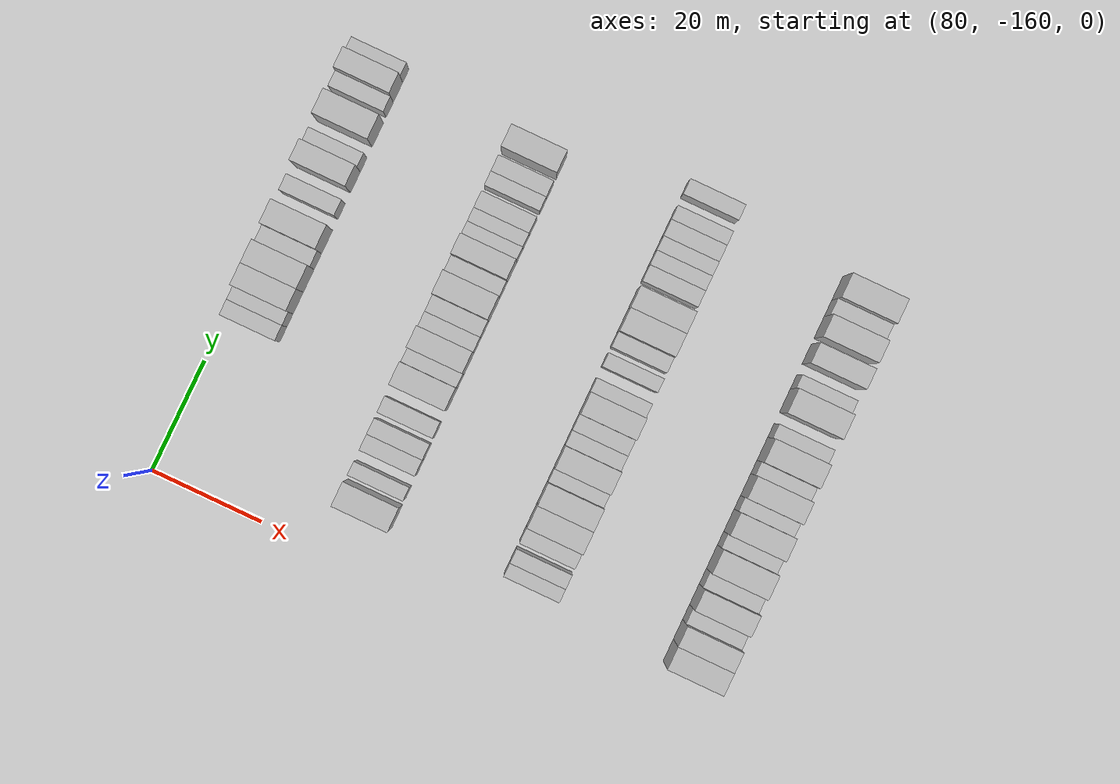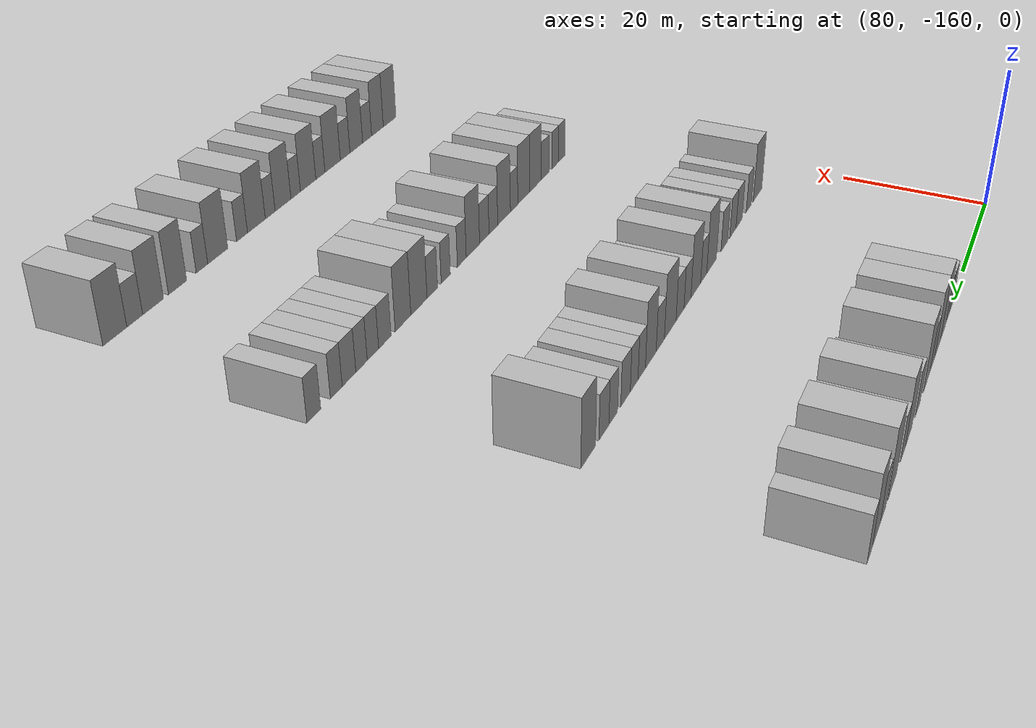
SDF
<sdf version="1.6">
 <world name="default">
  <model name="building_539">
   <static>1</static>
   <pose>85.0000 -130.4149 0 0.000000 0.000000 0.000000</pose>
   <link name="link">
    <pose>0 0 3.00 0 0 0</pose>
    <collision name="collision"><geometry><box><size>10.0000 2.7645 6.0000</size></box></geometry></collision>
    <visual name="visual">
     <cast_shadows>0</cast_shadows>
     <geometry><box><size>10.0000 2.7645 6.0000</size></box></geometry>
     <material>
      <script>
       <uri>model://HANNAS_wall/materials/scripts</uri>
       <uri>model://HANNAS_wall/materials/textures</uri>
       <name>vrc/HANNAS_wall</name>
      </script>
     </material>
    </visual>
   </link>
  </model>
  <model name="building_540">
   <static>1</static>
   <pose>85.0000 -127.8289 0 0.000000 0.000000 0.000000</pose>
   <link name="link">
    <pose>0 0 3.00 0 0 0</pose>
    <collision name="collision"><geometry><box><size>10.0000 2.4074 6.0000</size></box></geometry></collision>
    <visual name="visual">
     <cast_shadows>0</cast_shadows>
     <geometry><box><size>10.0000 2.4074 6.0000</size></box></geometry>
     <material>
      <script>
       <uri>model://HANNAS_wall/materials/scripts</uri>
       <uri>model://HANNAS_wall/materials/textures</uri>
       <name>vrc/HANNAS_wall</name>
      </script>
     </material>
    </visual>
   </link>
  </model>
  <model name="building_541">
   <static>1</static>
   <pose>85.0000 -124.6546 0 0.000000 0.000000 0.000000</pose>
   <link name="link">
    <pose>0 0 4.50 0 0 0</pose>
    <collision name="collision"><geometry><box><size>10.0000 3.9412 9.0000</size></box></geometry></collision>
    <visual name="visual">
     <cast_shadows>0</cast_shadows>
     <geometry><box><size>10.0000 3.9412 9.0000</size></box></geometry>
     <material>
      <script>
       <uri>model://HANNAS_wall/materials/scripts</uri>
       <uri>model://HANNAS_wall/materials/textures</uri>
       <name>vrc/HANNAS_wall</name>
      </script>
     </material>
    </visual>
   </link>
  </model>
  <model name="building_542">
   <static>1</static>
   <pose>85.0000 -120.5861 0 0.000000 0.000000 0.000000</pose>
   <link name="link">
    <pose>0 0 4.50 0 0 0</pose>
    <collision name="collision"><geometry><box><size>10.0000 4.1958 9.0000</size></box></geometry></collision>
    <visual name="visual">
     <cast_shadows>0</cast_shadows>
     <geometry><box><size>10.0000 4.1958 9.0000</size></box></geometry>
     <material>
      <script>
       <uri>model://HANNAS_wall/materials/scripts</uri>
       <uri>model://HANNAS_wall/materials/textures</uri>
       <name>vrc/HANNAS_wall</name>
      </script>
     </material>
    </visual>
   </link>
  </model>
  <model name="building_543">
   <static>1</static>
   <pose>85.0000 -117.0441 0 0.000000 0.000000 0.000000</pose>
   <link name="link">
    <pose>0 0 3.00 0 0 0</pose>
    <collision name="collision"><geometry><box><size>10.0000 2.8881 6.0000</size></box></geometry></collision>
    <visual name="visual">
     <cast_shadows>0</cast_shadows>
     <geometry><box><size>10.0000 2.8881 6.0000</size></box></geometry>
     <material>
      <script>
       <uri>model://HANNAS_wall/materials/scripts</uri>
       <uri>model://HANNAS_wall/materials/textures</uri>
       <name>vrc/HANNAS_wall</name>
      </script>
     </material>
    </visual>
   </link>
  </model>
  <model name="building_544">
   <static>1</static>
   <pose>85.0000 -113.4410 0 0.000000 0.000000 0.000000</pose>
   <link name="link">
    <pose>0 0 4.50 0 0 0</pose>
    <collision name="collision"><geometry><box><size>10.0000 4.3182 9.0000</size></box></geometry></collision>
    <visual name="visual">
     <cast_shadows>0</cast_shadows>
     <geometry><box><size>10.0000 4.3182 9.0000</size></box></geometry>
     <material>
      <script>
       <uri>model://HANNAS_wall/materials/scripts</uri>
       <uri>model://HANNAS_wall/materials/textures</uri>
       <name>vrc/HANNAS_wall</name>
      </script>
     </material>
    </visual>
   </link>
  </model>
  <model name="building_545">
   <static>1</static>
   <pose>85.0000 -107.8302 0 0.000000 0.000000 0.000000</pose>
   <link name="link">
    <pose>0 0 3.00 0 0 0</pose>
    <collision name="collision"><geometry><box><size>10.0000 2.9035 6.0000</size></box></geometry></collision>
    <visual name="visual">
     <cast_shadows>0</cast_shadows>
     <geometry><box><size>10.0000 2.9035 6.0000</size></box></geometry>
     <material>
      <script>
       <uri>model://HANNAS_wall/materials/scripts</uri>
       <uri>model://HANNAS_wall/materials/textures</uri>
       <name>vrc/HANNAS_wall</name>
      </script>
     </material>
    </visual>
   </link>
  </model>
  <model name="building_546">
   <static>1</static>
   <pose>85.0000 -102.4607 0 0.000000 0.000000 0.000000</pose>
   <link name="link">
    <pose>0 0 4.50 0 0 0</pose>
    <collision name="collision"><geometry><box><size>10.0000 3.8355 9.0000</size></box></geometry></collision>
    <visual name="visual">
     <cast_shadows>0</cast_shadows>
     <geometry><box><size>10.0000 3.8355 9.0000</size></box></geometry>
     <material>
      <script>
       <uri>model://HANNAS_wall/materials/scripts</uri>
       <uri>model://HANNAS_wall/materials/textures</uri>
       <name>vrc/HANNAS_wall</name>
      </script>
     </material>
    </visual>
   </link>
  </model>
  <model name="building_547">
   <static>1</static>
   <pose>85.0000 -99.2539 0 0.000000 0.000000 0.000000</pose>
   <link name="link">
    <pose>0 0 3.00 0 0 0</pose>
    <collision name="collision"><geometry><box><size>10.0000 2.5783 6.0000</size></box></geometry></collision>
    <visual name="visual">
     <cast_shadows>0</cast_shadows>
     <geometry><box><size>10.0000 2.5783 6.0000</size></box></geometry>
     <material>
      <script>
       <uri>model://HANNAS_wall/materials/scripts</uri>
       <uri>model://HANNAS_wall/materials/textures</uri>
       <name>vrc/HANNAS_wall</name>
      </script>
     </material>
    </visual>
   </link>
  </model>
  <model name="building_548">
   <static>1</static>
   <pose>85.0000 -93.7427 0 0.000000 0.000000 0.000000</pose>
   <link name="link">
    <pose>0 0 4.50 0 0 0</pose>
    <collision name="collision"><geometry><box><size>10.0000 4.4441 9.0000</size></box></geometry></collision>
    <visual name="visual">
     <cast_shadows>0</cast_shadows>
     <geometry><box><size>10.0000 4.4441 9.0000</size></box></geometry>
     <material>
      <script>
       <uri>model://HANNAS_wall/materials/scripts</uri>
       <uri>model://HANNAS_wall/materials/textures</uri>
       <name>vrc/HANNAS_wall</name>
      </script>
     </material>
    </visual>
   </link>
  </model>
  <model name="building_549">
   <static>1</static>
   <pose>85.0000 -89.1301 0 0.000000 0.000000 0.000000</pose>
   <link name="link">
    <pose>0 0 3.00 0 0 0</pose>
    <collision name="collision"><geometry><box><size>10.0000 2.7810 6.0000</size></box></geometry></collision>
    <visual name="visual">
     <cast_shadows>0</cast_shadows>
     <geometry><box><size>10.0000 2.7810 6.0000</size></box></geometry>
     <material>
      <script>
       <uri>model://HANNAS_wall/materials/scripts</uri>
       <uri>model://HANNAS_wall/materials/textures</uri>
       <name>vrc/HANNAS_wall</name>
      </script>
     </material>
    </visual>
   </link>
  </model>
  <model name="building_550">
   <static>1</static>
   <pose>85.0000 -85.9074 0 0.000000 0.000000 0.000000</pose>
   <link name="link">
    <pose>0 0 4.50 0 0 0</pose>
    <collision name="collision"><geometry><box><size>10.0000 3.6644 9.0000</size></box></geometry></collision>
    <visual name="visual">
     <cast_shadows>0</cast_shadows>
     <geometry><box><size>10.0000 3.6644 9.0000</size></box></geometry>
     <material>
      <script>
       <uri>model://HANNAS_wall/materials/scripts</uri>
       <uri>model://HANNAS_wall/materials/textures</uri>
       <name>vrc/HANNAS_wall</name>
      </script>
     </material>
    </visual>
   </link>
  </model>
  <model name="building_551">
   <static>1</static>
   <pose>85.0000 -82.8521 0 0.000000 0.000000 0.000000</pose>
   <link name="link">
    <pose>0 0 3.00 0 0 0</pose>
    <collision name="collision"><geometry><box><size>10.0000 2.4461 6.0000</size></box></geometry></collision>
    <visual name="visual">
     <cast_shadows>0</cast_shadows>
     <geometry><box><size>10.0000 2.4461 6.0000</size></box></geometry>
     <material>
      <script>
       <uri>model://HANNAS_wall/materials/scripts</uri>
       <uri>model://HANNAS_wall/materials/textures</uri>
       <name>vrc/HANNAS_wall</name>
      </script>
     </material>
    </visual>
   </link>
  </model>
  <model name="building_756">
   <static>1</static>
   <pose>115.0000 -149.6514 0 0.000000 0.000000 0.000000</pose>
   <link name="link">
    <pose>0 0 4.50 0 0 0</pose>
    <collision name="collision"><geometry><box><size>10.0000 4.3815 9.0000</size></box></geometry></collision>
    <visual name="visual">
     <cast_shadows>0</cast_shadows>
     <geometry><box><size>10.0000 4.3815 9.0000</size></box></geometry>
     <material>
      <script>
       <uri>model://HANNAS_wall/materials/scripts</uri>
       <uri>model://HANNAS_wall/materials/textures</uri>
       <name>vrc/HANNAS_wall</name>
      </script>
     </material>
    </visual>
   </link>
  </model>
  <model name="building_757">
   <static>1</static>
   <pose>115.0000 -145.2228 0 0.000000 0.000000 0.000000</pose>
   <link name="link">
    <pose>0 0 3.00 0 0 0</pose>
    <collision name="collision"><geometry><box><size>10.0000 2.4757 6.0000</size></box></geometry></collision>
    <visual name="visual">
     <cast_shadows>0</cast_shadows>
     <geometry><box><size>10.0000 2.4757 6.0000</size></box></geometry>
     <material>
      <script>
       <uri>model://HANNAS_wall/materials/scripts</uri>
       <uri>model://HANNAS_wall/materials/textures</uri>
       <name>vrc/HANNAS_wall</name>
      </script>
     </material>
    </visual>
   </link>
  </model>
  <model name="building_758">
   <static>1</static>
   <pose>115.0000 -140.5453 0 0.000000 0.000000 0.000000</pose>
   <link name="link">
    <pose>0 0 3.00 0 0 0</pose>
    <collision name="collision"><geometry><box><size>10.0000 2.8793 6.0000</size></box></geometry></collision>
    <visual name="visual">
     <cast_shadows>0</cast_shadows>
     <geometry><box><size>10.0000 2.8793 6.0000</size></box></geometry>
     <material>
      <script>
       <uri>model://HANNAS_wall/materials/scripts</uri>
       <uri>model://HANNAS_wall/materials/textures</uri>
       <name>vrc/HANNAS_wall</name>
      </script>
     </material>
    </visual>
   </link>
  </model>
  <model name="building_759">
   <static>1</static>
   <pose>115.0000 -137.6579 0 0.000000 0.000000 0.000000</pose>
   <link name="link">
    <pose>0 0 3.00 0 0 0</pose>
    <collision name="collision"><geometry><box><size>10.0000 2.8955 6.0000</size></box></geometry></collision>
    <visual name="visual">
     <cast_shadows>0</cast_shadows>
     <geometry><box><size>10.0000 2.8955 6.0000</size></box></geometry>
     <material>
      <script>
       <uri>model://HANNAS_wall/materials/scripts</uri>
       <uri>model://HANNAS_wall/materials/textures</uri>
       <name>vrc/HANNAS_wall</name>
      </script>
     </material>
    </visual>
   </link>
  </model>
  <model name="building_760">
   <static>1</static>
   <pose>115.0000 -133.7371 0 0.000000 0.000000 0.000000</pose>
   <link name="link">
    <pose>0 0 3.00 0 0 0</pose>
    <collision name="collision"><geometry><box><size>10.0000 2.9461 6.0000</size></box></geometry></collision>
    <visual name="visual">
     <cast_shadows>0</cast_shadows>
     <geometry><box><size>10.0000 2.9461 6.0000</size></box></geometry>
     <material>
      <script>
       <uri>model://HANNAS_wall/materials/scripts</uri>
       <uri>model://HANNAS_wall/materials/textures</uri>
       <name>vrc/HANNAS_wall</name>
      </script>
     </material>
    </visual>
   </link>
  </model>
  <model name="building_761">
   <static>1</static>
   <pose>115.0000 -128.2009 0 0.000000 0.000000 0.000000</pose>
   <link name="link">
    <pose>0 0 4.50 0 0 0</pose>
    <collision name="collision"><geometry><box><size>10.0000 4.1262 9.0000</size></box></geometry></collision>
    <visual name="visual">
     <cast_shadows>0</cast_shadows>
     <geometry><box><size>10.0000 4.1262 9.0000</size></box></geometry>
     <material>
      <script>
       <uri>model://HANNAS_wall/materials/scripts</uri>
       <uri>model://HANNAS_wall/materials/textures</uri>
       <name>vrc/HANNAS_wall</name>
      </script>
     </material>
    </visual>
   </link>
  </model>
  <model name="building_762">
   <static>1</static>
   <pose>115.0000 -124.8843 0 0.000000 0.000000 0.000000</pose>
   <link name="link">
    <pose>0 0 3.00 0 0 0</pose>
    <collision name="collision"><geometry><box><size>10.0000 2.5070 6.0000</size></box></geometry></collision>
    <visual name="visual">
     <cast_shadows>0</cast_shadows>
     <geometry><box><size>10.0000 2.5070 6.0000</size></box></geometry>
     <material>
      <script>
       <uri>model://HANNAS_wall/materials/scripts</uri>
       <uri>model://HANNAS_wall/materials/textures</uri>
       <name>vrc/HANNAS_wall</name>
      </script>
     </material>
    </visual>
   </link>
  </model>
  <model name="building_763">
   <static>1</static>
   <pose>115.0000 -121.6791 0 0.000000 0.000000 0.000000</pose>
   <link name="link">
    <pose>0 0 4.50 0 0 0</pose>
    <collision name="collision"><geometry><box><size>10.0000 3.9035 9.0000</size></box></geometry></collision>
    <visual name="visual">
     <cast_shadows>0</cast_shadows>
     <geometry><box><size>10.0000 3.9035 9.0000</size></box></geometry>
     <material>
      <script>
       <uri>model://HANNAS_wall/materials/scripts</uri>
       <uri>model://HANNAS_wall/materials/textures</uri>
       <name>vrc/HANNAS_wall</name>
      </script>
     </material>
    </visual>
   </link>
  </model>
  <model name="building_764">
   <static>1</static>
   <pose>115.0000 -118.3856 0 0.000000 0.000000 0.000000</pose>
   <link name="link">
    <pose>0 0 3.00 0 0 0</pose>
    <collision name="collision"><geometry><box><size>10.0000 2.6836 6.0000</size></box></geometry></collision>
    <visual name="visual">
     <cast_shadows>0</cast_shadows>
     <geometry><box><size>10.0000 2.6836 6.0000</size></box></geometry>
     <material>
      <script>
       <uri>model://HANNAS_wall/materials/scripts</uri>
       <uri>model://HANNAS_wall/materials/textures</uri>
       <name>vrc/HANNAS_wall</name>
      </script>
     </material>
    </visual>
   </link>
  </model>
  <model name="building_765">
   <static>1</static>
   <pose>115.0000 -115.5446 0 0.000000 0.000000 0.000000</pose>
   <link name="link">
    <pose>0 0 3.00 0 0 0</pose>
    <collision name="collision"><geometry><box><size>10.0000 2.9984 6.0000</size></box></geometry></collision>
    <visual name="visual">
     <cast_shadows>0</cast_shadows>
     <geometry><box><size>10.0000 2.9984 6.0000</size></box></geometry>
     <material>
      <script>
       <uri>model://HANNAS_wall/materials/scripts</uri>
       <uri>model://HANNAS_wall/materials/textures</uri>
       <name>vrc/HANNAS_wall</name>
      </script>
     </material>
    </visual>
   </link>
  </model>
  <model name="building_766">
   <static>1</static>
   <pose>115.0000 -111.9162 0 0.000000 0.000000 0.000000</pose>
   <link name="link">
    <pose>0 0 4.50 0 0 0</pose>
    <collision name="collision"><geometry><box><size>10.0000 4.2585 9.0000</size></box></geometry></collision>
    <visual name="visual">
     <cast_shadows>0</cast_shadows>
     <geometry><box><size>10.0000 4.2585 9.0000</size></box></geometry>
     <material>
      <script>
       <uri>model://HANNAS_wall/materials/scripts</uri>
       <uri>model://HANNAS_wall/materials/textures</uri>
       <name>vrc/HANNAS_wall</name>
      </script>
     </material>
    </visual>
   </link>
  </model>
  <model name="building_767">
   <static>1</static>
   <pose>115.0000 -108.3424 0 0.000000 0.000000 0.000000</pose>
   <link name="link">
    <pose>0 0 3.00 0 0 0</pose>
    <collision name="collision"><geometry><box><size>10.0000 2.8889 6.0000</size></box></geometry></collision>
    <visual name="visual">
     <cast_shadows>0</cast_shadows>
     <geometry><box><size>10.0000 2.8889 6.0000</size></box></geometry>
     <material>
      <script>
       <uri>model://HANNAS_wall/materials/scripts</uri>
       <uri>model://HANNAS_wall/materials/textures</uri>
       <name>vrc/HANNAS_wall</name>
      </script>
     </material>
    </visual>
   </link>
  </model>
  <model name="building_768">
   <static>1</static>
   <pose>115.0000 -105.0635 0 0.000000 0.000000 0.000000</pose>
   <link name="link">
    <pose>0 0 4.50 0 0 0</pose>
    <collision name="collision"><geometry><box><size>10.0000 3.6689 9.0000</size></box></geometry></collision>
    <visual name="visual">
     <cast_shadows>0</cast_shadows>
     <geometry><box><size>10.0000 3.6689 9.0000</size></box></geometry>
     <material>
      <script>
       <uri>model://HANNAS_wall/materials/scripts</uri>
       <uri>model://HANNAS_wall/materials/textures</uri>
       <name>vrc/HANNAS_wall</name>
      </script>
     </material>
    </visual>
   </link>
  </model>
  <model name="building_769">
   <static>1</static>
   <pose>115.0000 -102.0070 0 0.000000 0.000000 0.000000</pose>
   <link name="link">
    <pose>0 0 3.00 0 0 0</pose>
    <collision name="collision"><geometry><box><size>10.0000 2.4442 6.0000</size></box></geometry></collision>
    <visual name="visual">
     <cast_shadows>0</cast_shadows>
     <geometry><box><size>10.0000 2.4442 6.0000</size></box></geometry>
     <material>
      <script>
       <uri>model://HANNAS_wall/materials/scripts</uri>
       <uri>model://HANNAS_wall/materials/textures</uri>
       <name>vrc/HANNAS_wall</name>
      </script>
     </material>
    </visual>
   </link>
  </model>
  <model name="building_770">
   <static>1</static>
   <pose>115.0000 -99.5461 0 0.000000 0.000000 0.000000</pose>
   <link name="link">
    <pose>0 0 3.00 0 0 0</pose>
    <collision name="collision"><geometry><box><size>10.0000 2.4774 6.0000</size></box></geometry></collision>
    <visual name="visual">
     <cast_shadows>0</cast_shadows>
     <geometry><box><size>10.0000 2.4774 6.0000</size></box></geometry>
     <material>
      <script>
       <uri>model://HANNAS_wall/materials/scripts</uri>
       <uri>model://HANNAS_wall/materials/textures</uri>
       <name>vrc/HANNAS_wall</name>
      </script>
     </material>
    </visual>
   </link>
  </model>
  <model name="building_771">
   <static>1</static>
   <pose>115.0000 -96.8161 0 0.000000 0.000000 0.000000</pose>
   <link name="link">
    <pose>0 0 3.00 0 0 0</pose>
    <collision name="collision"><geometry><box><size>10.0000 2.9827 6.0000</size></box></geometry></collision>
    <visual name="visual">
     <cast_shadows>0</cast_shadows>
     <geometry><box><size>10.0000 2.9827 6.0000</size></box></geometry>
     <material>
      <script>
       <uri>model://HANNAS_wall/materials/scripts</uri>
       <uri>model://HANNAS_wall/materials/textures</uri>
       <name>vrc/HANNAS_wall</name>
      </script>
     </material>
    </visual>
   </link>
  </model>
  <model name="building_772">
   <static>1</static>
   <pose>115.0000 -93.0438 0 0.000000 0.000000 0.000000</pose>
   <link name="link">
    <pose>0 0 3.00 0 0 0</pose>
    <collision name="collision"><geometry><box><size>10.0000 2.5618 6.0000</size></box></geometry></collision>
    <visual name="visual">
     <cast_shadows>0</cast_shadows>
     <geometry><box><size>10.0000 2.5618 6.0000</size></box></geometry>
     <material>
      <script>
       <uri>model://HANNAS_wall/materials/scripts</uri>
       <uri>model://HANNAS_wall/materials/textures</uri>
       <name>vrc/HANNAS_wall</name>
      </script>
     </material>
    </visual>
   </link>
  </model>
  <model name="building_773">
   <static>1</static>
   <pose>115.0000 -90.2993 0 0.000000 0.000000 0.000000</pose>
   <link name="link">
    <pose>0 0 3.00 0 0 0</pose>
    <collision name="collision"><geometry><box><size>10.0000 2.9272 6.0000</size></box></geometry></collision>
    <visual name="visual">
     <cast_shadows>0</cast_shadows>
     <geometry><box><size>10.0000 2.9272 6.0000</size></box></geometry>
     <material>
      <script>
       <uri>model://HANNAS_wall/materials/scripts</uri>
       <uri>model://HANNAS_wall/materials/textures</uri>
       <name>vrc/HANNAS_wall</name>
      </script>
     </material>
    </visual>
   </link>
  </model>
  <model name="building_774">
   <static>1</static>
   <pose>115.0000 -85.8157 0 0.000000 0.000000 0.000000</pose>
   <link name="link">
    <pose>0 0 4.50 0 0 0</pose>
    <collision name="collision"><geometry><box><size>10.0000 4.0402 9.0000</size></box></geometry></collision>
    <visual name="visual">
     <cast_shadows>0</cast_shadows>
     <geometry><box><size>10.0000 4.0402 9.0000</size></box></geometry>
     <material>
      <script>
       <uri>model://HANNAS_wall/materials/scripts</uri>
       <uri>model://HANNAS_wall/materials/textures</uri>
       <name>vrc/HANNAS_wall</name>
      </script>
     </material>
    </visual>
   </link>
  </model>
  <model name="building_991">
   <static>1</static>
   <pose>145.0000 -149.3059 0 0.000000 0.000000 0.000000</pose>
   <link name="link">
    <pose>0 0 3.00 0 0 0</pose>
    <collision name="collision"><geometry><box><size>10.0000 2.4069 6.0000</size></box></geometry></collision>
    <visual name="visual">
     <cast_shadows>0</cast_shadows>
     <geometry><box><size>10.0000 2.4069 6.0000</size></box></geometry>
     <material>
      <script>
       <uri>model://HANNAS_wall/materials/scripts</uri>
       <uri>model://HANNAS_wall/materials/textures</uri>
       <name>vrc/HANNAS_wall</name>
      </script>
     </material>
    </visual>
   </link>
  </model>
  <model name="building_992">
   <static>1</static>
   <pose>145.0000 -146.8213 0 0.000000 0.000000 0.000000</pose>
   <link name="link">
    <pose>0 0 3.00 0 0 0</pose>
    <collision name="collision"><geometry><box><size>10.0000 2.5622 6.0000</size></box></geometry></collision>
    <visual name="visual">
     <cast_shadows>0</cast_shadows>
     <geometry><box><size>10.0000 2.5622 6.0000</size></box></geometry>
     <material>
      <script>
       <uri>model://HANNAS_wall/materials/scripts</uri>
       <uri>model://HANNAS_wall/materials/textures</uri>
       <name>vrc/HANNAS_wall</name>
      </script>
     </material>
    </visual>
   </link>
  </model>
  <model name="building_993">
   <static>1</static>
   <pose>145.0000 -143.0931 0 0.000000 0.000000 0.000000</pose>
   <link name="link">
    <pose>0 0 3.00 0 0 0</pose>
    <collision name="collision"><geometry><box><size>10.0000 2.8942 6.0000</size></box></geometry></collision>
    <visual name="visual">
     <cast_shadows>0</cast_shadows>
     <geometry><box><size>10.0000 2.8942 6.0000</size></box></geometry>
     <material>
      <script>
       <uri>model://HANNAS_wall/materials/scripts</uri>
       <uri>model://HANNAS_wall/materials/textures</uri>
       <name>vrc/HANNAS_wall</name>
      </script>
     </material>
    </visual>
   </link>
  </model>
  <model name="building_994">
   <static>1</static>
   <pose>145.0000 -139.6429 0 0.000000 0.000000 0.000000</pose>
   <link name="link">
    <pose>0 0 4.50 0 0 0</pose>
    <collision name="collision"><geometry><box><size>10.0000 4.0061 9.0000</size></box></geometry></collision>
    <visual name="visual">
     <cast_shadows>0</cast_shadows>
     <geometry><box><size>10.0000 4.0061 9.0000</size></box></geometry>
     <material>
      <script>
       <uri>model://HANNAS_wall/materials/scripts</uri>
       <uri>model://HANNAS_wall/materials/textures</uri>
       <name>vrc/HANNAS_wall</name>
      </script>
     </material>
    </visual>
   </link>
  </model>
  <model name="building_995">
   <static>1</static>
   <pose>145.0000 -135.6012 0 0.000000 0.000000 0.000000</pose>
   <link name="link">
    <pose>0 0 4.50 0 0 0</pose>
    <collision name="collision"><geometry><box><size>10.0000 4.0774 9.0000</size></box></geometry></collision>
    <visual name="visual">
     <cast_shadows>0</cast_shadows>
     <geometry><box><size>10.0000 4.0774 9.0000</size></box></geometry>
     <material>
      <script>
       <uri>model://HANNAS_wall/materials/scripts</uri>
       <uri>model://HANNAS_wall/materials/textures</uri>
       <name>vrc/HANNAS_wall</name>
      </script>
     </material>
    </visual>
   </link>
  </model>
  <model name="building_996">
   <static>1</static>
   <pose>145.0000 -132.3313 0 0.000000 0.000000 0.000000</pose>
   <link name="link">
    <pose>0 0 3.00 0 0 0</pose>
    <collision name="collision"><geometry><box><size>10.0000 2.4624 6.0000</size></box></geometry></collision>
    <visual name="visual">
     <cast_shadows>0</cast_shadows>
     <geometry><box><size>10.0000 2.4624 6.0000</size></box></geometry>
     <material>
      <script>
       <uri>model://HANNAS_wall/materials/scripts</uri>
       <uri>model://HANNAS_wall/materials/textures</uri>
       <name>vrc/HANNAS_wall</name>
      </script>
     </material>
    </visual>
   </link>
  </model>
  <model name="building_997">
   <static>1</static>
   <pose>145.0000 -129.0486 0 0.000000 0.000000 0.000000</pose>
   <link name="link">
    <pose>0 0 4.50 0 0 0</pose>
    <collision name="collision"><geometry><box><size>10.0000 4.1032 9.0000</size></box></geometry></collision>
    <visual name="visual">
     <cast_shadows>0</cast_shadows>
     <geometry><box><size>10.0000 4.1032 9.0000</size></box></geometry>
     <material>
      <script>
       <uri>model://HANNAS_wall/materials/scripts</uri>
       <uri>model://HANNAS_wall/materials/textures</uri>
       <name>vrc/HANNAS_wall</name>
      </script>
     </material>
    </visual>
   </link>
  </model>
  <model name="building_998">
   <static>1</static>
   <pose>145.0000 -125.6347 0 0.000000 0.000000 0.000000</pose>
   <link name="link">
    <pose>0 0 3.00 0 0 0</pose>
    <collision name="collision"><geometry><box><size>10.0000 2.7245 6.0000</size></box></geometry></collision>
    <visual name="visual">
     <cast_shadows>0</cast_shadows>
     <geometry><box><size>10.0000 2.7245 6.0000</size></box></geometry>
     <material>
      <script>
       <uri>model://HANNAS_wall/materials/scripts</uri>
       <uri>model://HANNAS_wall/materials/textures</uri>
       <name>vrc/HANNAS_wall</name>
      </script>
     </material>
    </visual>
   </link>
  </model>
  <model name="building_999">
   <static>1</static>
   <pose>145.0000 -122.8305 0 0.000000 0.000000 0.000000</pose>
   <link name="link">
    <pose>0 0 3.00 0 0 0</pose>
    <collision name="collision"><geometry><box><size>10.0000 2.8841 6.0000</size></box></geometry></collision>
    <visual name="visual">
     <cast_shadows>0</cast_shadows>
     <geometry><box><size>10.0000 2.8841 6.0000</size></box></geometry>
     <material>
      <script>
       <uri>model://HANNAS_wall/materials/scripts</uri>
       <uri>model://HANNAS_wall/materials/textures</uri>
       <name>vrc/HANNAS_wall</name>
      </script>
     </material>
    </visual>
   </link>
  </model>
  <model name="building_1000">
   <static>1</static>
   <pose>145.0000 -119.4106 0 0.000000 0.000000 0.000000</pose>
   <link name="link">
    <pose>0 0 4.50 0 0 0</pose>
    <collision name="collision"><geometry><box><size>10.0000 3.9557 9.0000</size></box></geometry></collision>
    <visual name="visual">
     <cast_shadows>0</cast_shadows>
     <geometry><box><size>10.0000 3.9557 9.0000</size></box></geometry>
     <material>
      <script>
       <uri>model://HANNAS_wall/materials/scripts</uri>
       <uri>model://HANNAS_wall/materials/textures</uri>
       <name>vrc/HANNAS_wall</name>
      </script>
     </material>
    </visual>
   </link>
  </model>
  <model name="building_1001">
   <static>1</static>
   <pose>145.0000 -116.1544 0 0.000000 0.000000 0.000000</pose>
   <link name="link">
    <pose>0 0 3.00 0 0 0</pose>
    <collision name="collision"><geometry><box><size>10.0000 2.5565 6.0000</size></box></geometry></collision>
    <visual name="visual">
     <cast_shadows>0</cast_shadows>
     <geometry><box><size>10.0000 2.5565 6.0000</size></box></geometry>
     <material>
      <script>
       <uri>model://HANNAS_wall/materials/scripts</uri>
       <uri>model://HANNAS_wall/materials/textures</uri>
       <name>vrc/HANNAS_wall</name>
      </script>
     </material>
    </visual>
   </link>
  </model>
  <model name="building_1002">
   <static>1</static>
   <pose>145.0000 -111.6190 0 0.000000 0.000000 0.000000</pose>
   <link name="link">
    <pose>0 0 3.00 0 0 0</pose>
    <collision name="collision"><geometry><box><size>10.0000 2.5144 6.0000</size></box></geometry></collision>
    <visual name="visual">
     <cast_shadows>0</cast_shadows>
     <geometry><box><size>10.0000 2.5144 6.0000</size></box></geometry>
     <material>
      <script>
       <uri>model://HANNAS_wall/materials/scripts</uri>
       <uri>model://HANNAS_wall/materials/textures</uri>
       <name>vrc/HANNAS_wall</name>
      </script>
     </material>
    </visual>
   </link>
  </model>
  <model name="building_1003">
   <static>1</static>
   <pose>145.0000 -107.9648 0 0.000000 0.000000 0.000000</pose>
   <link name="link">
    <pose>0 0 3.00 0 0 0</pose>
    <collision name="collision"><geometry><box><size>10.0000 2.7940 6.0000</size></box></geometry></collision>
    <visual name="visual">
     <cast_shadows>0</cast_shadows>
     <geometry><box><size>10.0000 2.7940 6.0000</size></box></geometry>
     <material>
      <script>
       <uri>model://HANNAS_wall/materials/scripts</uri>
       <uri>model://HANNAS_wall/materials/textures</uri>
       <name>vrc/HANNAS_wall</name>
      </script>
     </material>
    </visual>
   </link>
  </model>
  <model name="building_1004">
   <static>1</static>
   <pose>145.0000 -104.4766 0 0.000000 0.000000 0.000000</pose>
   <link name="link">
    <pose>0 0 4.50 0 0 0</pose>
    <collision name="collision"><geometry><box><size>10.0000 4.1823 9.0000</size></box></geometry></collision>
    <visual name="visual">
     <cast_shadows>0</cast_shadows>
     <geometry><box><size>10.0000 4.1823 9.0000</size></box></geometry>
     <material>
      <script>
       <uri>model://HANNAS_wall/materials/scripts</uri>
       <uri>model://HANNAS_wall/materials/textures</uri>
       <name>vrc/HANNAS_wall</name>
      </script>
     </material>
    </visual>
   </link>
  </model>
  <model name="building_1005">
   <static>1</static>
   <pose>145.0000 -100.4321 0 0.000000 0.000000 0.000000</pose>
   <link name="link">
    <pose>0 0 4.50 0 0 0</pose>
    <collision name="collision"><geometry><box><size>10.0000 3.9067 9.0000</size></box></geometry></collision>
    <visual name="visual">
     <cast_shadows>0</cast_shadows>
     <geometry><box><size>10.0000 3.9067 9.0000</size></box></geometry>
     <material>
      <script>
       <uri>model://HANNAS_wall/materials/scripts</uri>
       <uri>model://HANNAS_wall/materials/textures</uri>
       <name>vrc/HANNAS_wall</name>
      </script>
     </material>
    </visual>
   </link>
  </model>
  <model name="building_1006">
   <static>1</static>
   <pose>145.0000 -96.0026 0 0.000000 0.000000 0.000000</pose>
   <link name="link">
    <pose>0 0 3.00 0 0 0</pose>
    <collision name="collision"><geometry><box><size>10.0000 2.9523 6.0000</size></box></geometry></collision>
    <visual name="visual">
     <cast_shadows>0</cast_shadows>
     <geometry><box><size>10.0000 2.9523 6.0000</size></box></geometry>
     <material>
      <script>
       <uri>model://HANNAS_wall/materials/scripts</uri>
       <uri>model://HANNAS_wall/materials/textures</uri>
       <name>vrc/HANNAS_wall</name>
      </script>
     </material>
    </visual>
   </link>
  </model>
  <model name="building_1007">
   <static>1</static>
   <pose>145.0000 -93.2080 0 0.000000 0.000000 0.000000</pose>
   <link name="link">
    <pose>0 0 3.00 0 0 0</pose>
    <collision name="collision"><geometry><box><size>10.0000 2.6368 6.0000</size></box></geometry></collision>
    <visual name="visual">
     <cast_shadows>0</cast_shadows>
     <geometry><box><size>10.0000 2.6368 6.0000</size></box></geometry>
     <material>
      <script>
       <uri>model://HANNAS_wall/materials/scripts</uri>
       <uri>model://HANNAS_wall/materials/textures</uri>
       <name>vrc/HANNAS_wall</name>
      </script>
     </material>
    </visual>
   </link>
  </model>
  <model name="building_1008">
   <static>1</static>
   <pose>145.0000 -90.6058 0 0.000000 0.000000 0.000000</pose>
   <link name="link">
    <pose>0 0 3.00 0 0 0</pose>
    <collision name="collision"><geometry><box><size>10.0000 2.5676 6.0000</size></box></geometry></collision>
    <visual name="visual">
     <cast_shadows>0</cast_shadows>
     <geometry><box><size>10.0000 2.5676 6.0000</size></box></geometry>
     <material>
      <script>
       <uri>model://HANNAS_wall/materials/scripts</uri>
       <uri>model://HANNAS_wall/materials/textures</uri>
       <name>vrc/HANNAS_wall</name>
      </script>
     </material>
    </visual>
   </link>
  </model>
  <model name="building_1009">
   <static>1</static>
   <pose>145.0000 -87.8278 0 0.000000 0.000000 0.000000</pose>
   <link name="link">
    <pose>0 0 3.00 0 0 0</pose>
    <collision name="collision"><geometry><box><size>10.0000 2.9884 6.0000</size></box></geometry></collision>
    <visual name="visual">
     <cast_shadows>0</cast_shadows>
     <geometry><box><size>10.0000 2.9884 6.0000</size></box></geometry>
     <material>
      <script>
       <uri>model://HANNAS_wall/materials/scripts</uri>
       <uri>model://HANNAS_wall/materials/textures</uri>
       <name>vrc/HANNAS_wall</name>
      </script>
     </material>
    </visual>
   </link>
  </model>
  <model name="building_1010">
   <static>1</static>
   <pose>145.0000 -85.0766 0 0.000000 0.000000 0.000000</pose>
   <link name="link">
    <pose>0 0 3.00 0 0 0</pose>
    <collision name="collision"><geometry><box><size>10.0000 2.5139 6.0000</size></box></geometry></collision>
    <visual name="visual">
     <cast_shadows>0</cast_shadows>
     <geometry><box><size>10.0000 2.5139 6.0000</size></box></geometry>
     <material>
      <script>
       <uri>model://HANNAS_wall/materials/scripts</uri>
       <uri>model://HANNAS_wall/materials/textures</uri>
       <name>vrc/HANNAS_wall</name>
      </script>
     </material>
    </visual>
   </link>
  </model>
  <model name="building_1011">
   <static>1</static>
   <pose>145.0000 -80.4164 0 0.000000 0.000000 0.000000</pose>
   <link name="link">
    <pose>0 0 3.00 0 0 0</pose>
    <collision name="collision"><geometry><box><size>10.0000 2.8066 6.0000</size></box></geometry></collision>
    <visual name="visual">
     <cast_shadows>0</cast_shadows>
     <geometry><box><size>10.0000 2.8066 6.0000</size></box></geometry>
     <material>
      <script>
       <uri>model://HANNAS_wall/materials/scripts</uri>
       <uri>model://HANNAS_wall/materials/textures</uri>
       <name>vrc/HANNAS_wall</name>
      </script>
     </material>
    </visual>
   </link>
  </model>
  <model name="building_1216">
   <static>1</static>
   <pose>175.0000 -150.4507 0 0.000000 0.000000 0.000000</pose>
   <link name="link">
    <pose>0 0 4.50 0 0 0</pose>
    <collision name="collision"><geometry><box><size>10.0000 4.0226 9.0000</size></box></geometry></collision>
    <visual name="visual">
     <cast_shadows>0</cast_shadows>
     <geometry><box><size>10.0000 4.0226 9.0000</size></box></geometry>
     <material>
      <script>
       <uri>model://HANNAS_wall/materials/scripts</uri>
       <uri>model://HANNAS_wall/materials/textures</uri>
       <name>vrc/HANNAS_wall</name>
      </script>
     </material>
    </visual>
   </link>
  </model>
  <model name="building_1217">
   <static>1</static>
   <pose>175.0000 -146.6199 0 0.000000 0.000000 0.000000</pose>
   <link name="link">
    <pose>0 0 4.50 0 0 0</pose>
    <collision name="collision"><geometry><box><size>10.0000 3.6391 9.0000</size></box></geometry></collision>
    <visual name="visual">
     <cast_shadows>0</cast_shadows>
     <geometry><box><size>10.0000 3.6391 9.0000</size></box></geometry>
     <material>
      <script>
       <uri>model://HANNAS_wall/materials/scripts</uri>
       <uri>model://HANNAS_wall/materials/textures</uri>
       <name>vrc/HANNAS_wall</name>
      </script>
     </material>
    </visual>
   </link>
  </model>
  <model name="building_1218">
   <static>1</static>
   <pose>175.0000 -143.4475 0 0.000000 0.000000 0.000000</pose>
   <link name="link">
    <pose>0 0 3.00 0 0 0</pose>
    <collision name="collision"><geometry><box><size>10.0000 2.7056 6.0000</size></box></geometry></collision>
    <visual name="visual">
     <cast_shadows>0</cast_shadows>
     <geometry><box><size>10.0000 2.7056 6.0000</size></box></geometry>
     <material>
      <script>
       <uri>model://HANNAS_wall/materials/scripts</uri>
       <uri>model://HANNAS_wall/materials/textures</uri>
       <name>vrc/HANNAS_wall</name>
      </script>
     </material>
    </visual>
   </link>
  </model>
  <model name="building_1219">
   <static>1</static>
   <pose>175.0000 -140.2178 0 0.000000 0.000000 0.000000</pose>
   <link name="link">
    <pose>0 0 4.50 0 0 0</pose>
    <collision name="collision"><geometry><box><size>10.0000 3.7539 9.0000</size></box></geometry></collision>
    <visual name="visual">
     <cast_shadows>0</cast_shadows>
     <geometry><box><size>10.0000 3.7539 9.0000</size></box></geometry>
     <material>
      <script>
       <uri>model://HANNAS_wall/materials/scripts</uri>
       <uri>model://HANNAS_wall/materials/textures</uri>
       <name>vrc/HANNAS_wall</name>
      </script>
     </material>
    </visual>
   </link>
  </model>
  <model name="building_1220">
   <static>1</static>
   <pose>175.0000 -136.9532 0 0.000000 0.000000 0.000000</pose>
   <link name="link">
    <pose>0 0 3.00 0 0 0</pose>
    <collision name="collision"><geometry><box><size>10.0000 2.7753 6.0000</size></box></geometry></collision>
    <visual name="visual">
     <cast_shadows>0</cast_shadows>
     <geometry><box><size>10.0000 2.7753 6.0000</size></box></geometry>
     <material>
      <script>
       <uri>model://HANNAS_wall/materials/scripts</uri>
       <uri>model://HANNAS_wall/materials/textures</uri>
       <name>vrc/HANNAS_wall</name>
      </script>
     </material>
    </visual>
   </link>
  </model>
  <model name="building_1221">
   <static>1</static>
   <pose>175.0000 -133.3988 0 0.000000 0.000000 0.000000</pose>
   <link name="link">
    <pose>0 0 4.50 0 0 0</pose>
    <collision name="collision"><geometry><box><size>10.0000 4.3334 9.0000</size></box></geometry></collision>
    <visual name="visual">
     <cast_shadows>0</cast_shadows>
     <geometry><box><size>10.0000 4.3334 9.0000</size></box></geometry>
     <material>
      <script>
       <uri>model://HANNAS_wall/materials/scripts</uri>
       <uri>model://HANNAS_wall/materials/textures</uri>
       <name>vrc/HANNAS_wall</name>
      </script>
     </material>
    </visual>
   </link>
  </model>
  <model name="building_1222">
   <static>1</static>
   <pose>175.0000 -129.9929 0 0.000000 0.000000 0.000000</pose>
   <link name="link">
    <pose>0 0 3.00 0 0 0</pose>
    <collision name="collision"><geometry><box><size>10.0000 2.4783 6.0000</size></box></geometry></collision>
    <visual name="visual">
     <cast_shadows>0</cast_shadows>
     <geometry><box><size>10.0000 2.4783 6.0000</size></box></geometry>
     <material>
      <script>
       <uri>model://HANNAS_wall/materials/scripts</uri>
       <uri>model://HANNAS_wall/materials/textures</uri>
       <name>vrc/HANNAS_wall</name>
      </script>
     </material>
    </visual>
   </link>
  </model>
  <model name="building_1223">
   <static>1</static>
   <pose>175.0000 -126.7074 0 0.000000 0.000000 0.000000</pose>
   <link name="link">
    <pose>0 0 4.50 0 0 0</pose>
    <collision name="collision"><geometry><box><size>10.0000 4.0929 9.0000</size></box></geometry></collision>
    <visual name="visual">
     <cast_shadows>0</cast_shadows>
     <geometry><box><size>10.0000 4.0929 9.0000</size></box></geometry>
     <material>
      <script>
       <uri>model://HANNAS_wall/materials/scripts</uri>
       <uri>model://HANNAS_wall/materials/textures</uri>
       <name>vrc/HANNAS_wall</name>
      </script>
     </material>
    </visual>
   </link>
  </model>
  <model name="building_1224">
   <static>1</static>
   <pose>175.0000 -123.4347 0 0.000000 0.000000 0.000000</pose>
   <link name="link">
    <pose>0 0 3.00 0 0 0</pose>
    <collision name="collision"><geometry><box><size>10.0000 2.4525 6.0000</size></box></geometry></collision>
    <visual name="visual">
     <cast_shadows>0</cast_shadows>
     <geometry><box><size>10.0000 2.4525 6.0000</size></box></geometry>
     <material>
      <script>
       <uri>model://HANNAS_wall/materials/scripts</uri>
       <uri>model://HANNAS_wall/materials/textures</uri>
       <name>vrc/HANNAS_wall</name>
      </script>
     </material>
    </visual>
   </link>
  </model>
  <model name="building_1225">
   <static>1</static>
   <pose>175.0000 -120.2144 0 0.000000 0.000000 0.000000</pose>
   <link name="link">
    <pose>0 0 4.50 0 0 0</pose>
    <collision name="collision"><geometry><box><size>10.0000 3.9881 9.0000</size></box></geometry></collision>
    <visual name="visual">
     <cast_shadows>0</cast_shadows>
     <geometry><box><size>10.0000 3.9881 9.0000</size></box></geometry>
     <material>
      <script>
       <uri>model://HANNAS_wall/materials/scripts</uri>
       <uri>model://HANNAS_wall/materials/textures</uri>
       <name>vrc/HANNAS_wall</name>
      </script>
     </material>
    </visual>
   </link>
  </model>
  <model name="building_1226">
   <static>1</static>
   <pose>175.0000 -117.0157 0 0.000000 0.000000 0.000000</pose>
   <link name="link">
    <pose>0 0 3.00 0 0 0</pose>
    <collision name="collision"><geometry><box><size>10.0000 2.4093 6.0000</size></box></geometry></collision>
    <visual name="visual">
     <cast_shadows>0</cast_shadows>
     <geometry><box><size>10.0000 2.4093 6.0000</size></box></geometry>
     <material>
      <script>
       <uri>model://HANNAS_wall/materials/scripts</uri>
       <uri>model://HANNAS_wall/materials/textures</uri>
       <name>vrc/HANNAS_wall</name>
      </script>
     </material>
    </visual>
   </link>
  </model>
  <model name="building_1227">
   <static>1</static>
   <pose>175.0000 -113.6954 0 0.000000 0.000000 0.000000</pose>
   <link name="link">
    <pose>0 0 4.50 0 0 0</pose>
    <collision name="collision"><geometry><box><size>10.0000 4.2313 9.0000</size></box></geometry></collision>
    <visual name="visual">
     <cast_shadows>0</cast_shadows>
     <geometry><box><size>10.0000 4.2313 9.0000</size></box></geometry>
     <material>
      <script>
       <uri>model://HANNAS_wall/materials/scripts</uri>
       <uri>model://HANNAS_wall/materials/textures</uri>
       <name>vrc/HANNAS_wall</name>
      </script>
     </material>
    </visual>
   </link>
  </model>
  <model name="building_1228">
   <static>1</static>
   <pose>175.0000 -110.3091 0 0.000000 0.000000 0.000000</pose>
   <link name="link">
    <pose>0 0 3.00 0 0 0</pose>
    <collision name="collision"><geometry><box><size>10.0000 2.5414 6.0000</size></box></geometry></collision>
    <visual name="visual">
     <cast_shadows>0</cast_shadows>
     <geometry><box><size>10.0000 2.5414 6.0000</size></box></geometry>
     <material>
      <script>
       <uri>model://HANNAS_wall/materials/scripts</uri>
       <uri>model://HANNAS_wall/materials/textures</uri>
       <name>vrc/HANNAS_wall</name>
      </script>
     </material>
    </visual>
   </link>
  </model>
  <model name="building_1229">
   <static>1</static>
   <pose>175.0000 -104.8387 0 0.000000 0.000000 0.000000</pose>
   <link name="link">
    <pose>0 0 4.50 0 0 0</pose>
    <collision name="collision"><geometry><box><size>10.0000 4.3993 9.0000</size></box></geometry></collision>
    <visual name="visual">
     <cast_shadows>0</cast_shadows>
     <geometry><box><size>10.0000 4.3993 9.0000</size></box></geometry>
     <material>
      <script>
       <uri>model://HANNAS_wall/materials/scripts</uri>
       <uri>model://HANNAS_wall/materials/textures</uri>
       <name>vrc/HANNAS_wall</name>
      </script>
     </material>
    </visual>
   </link>
  </model>
  <model name="building_1230">
   <static>1</static>
   <pose>175.0000 -101.3981 0 0.000000 0.000000 0.000000</pose>
   <link name="link">
    <pose>0 0 3.00 0 0 0</pose>
    <collision name="collision"><geometry><box><size>10.0000 2.4818 6.0000</size></box></geometry></collision>
    <visual name="visual">
     <cast_shadows>0</cast_shadows>
     <geometry><box><size>10.0000 2.4818 6.0000</size></box></geometry>
     <material>
      <script>
       <uri>model://HANNAS_wall/materials/scripts</uri>
       <uri>model://HANNAS_wall/materials/textures</uri>
       <name>vrc/HANNAS_wall</name>
      </script>
     </material>
    </visual>
   </link>
  </model>
  <model name="building_1231">
   <static>1</static>
   <pose>175.0000 -96.3135 0 0.000000 0.000000 0.000000</pose>
   <link name="link">
    <pose>0 0 4.50 0 0 0</pose>
    <collision name="collision"><geometry><box><size>10.0000 3.6874 9.0000</size></box></geometry></collision>
    <visual name="visual">
     <cast_shadows>0</cast_shadows>
     <geometry><box><size>10.0000 3.6874 9.0000</size></box></geometry>
     <material>
      <script>
       <uri>model://HANNAS_wall/materials/scripts</uri>
       <uri>model://HANNAS_wall/materials/textures</uri>
       <name>vrc/HANNAS_wall</name>
      </script>
     </material>
    </visual>
   </link>
  </model>
  <model name="building_1232">
   <static>1</static>
   <pose>175.0000 -91.4515 0 0.000000 0.000000 0.000000</pose>
   <link name="link">
    <pose>0 0 4.50 0 0 0</pose>
    <collision name="collision"><geometry><box><size>10.0000 4.0366 9.0000</size></box></geometry></collision>
    <visual name="visual">
     <cast_shadows>0</cast_shadows>
     <geometry><box><size>10.0000 4.0366 9.0000</size></box></geometry>
     <material>
      <script>
       <uri>model://HANNAS_wall/materials/scripts</uri>
       <uri>model://HANNAS_wall/materials/textures</uri>
       <name>vrc/HANNAS_wall</name>
      </script>
     </material>
    </visual>
   </link>
  </model>
  <model name="building_1233">
   <static>1</static>
   <pose>175.0000 -87.9384 0 0.000000 0.000000 0.000000</pose>
   <link name="link">
    <pose>0 0 3.00 0 0 0</pose>
    <collision name="collision"><geometry><box><size>10.0000 2.9897 6.0000</size></box></geometry></collision>
    <visual name="visual">
     <cast_shadows>0</cast_shadows>
     <geometry><box><size>10.0000 2.9897 6.0000</size></box></geometry>
     <material>
      <script>
       <uri>model://HANNAS_wall/materials/scripts</uri>
       <uri>model://HANNAS_wall/materials/textures</uri>
       <name>vrc/HANNAS_wall</name>
      </script>
     </material>
    </visual>
   </link>
  </model>
  <model name="building_1234">
   <static>1</static>
   <pose>175.0000 -84.2591 0 0.000000 0.000000 0.000000</pose>
   <link name="link">
    <pose>0 0 4.50 0 0 0</pose>
    <collision name="collision"><geometry><box><size>10.0000 4.3688 9.0000</size></box></geometry></collision>
    <visual name="visual">
     <cast_shadows>0</cast_shadows>
     <geometry><box><size>10.0000 4.3688 9.0000</size></box></geometry>
     <material>
      <script>
       <uri>model://HANNAS_wall/materials/scripts</uri>
       <uri>model://HANNAS_wall/materials/textures</uri>
       <name>vrc/HANNAS_wall</name>
      </script>
     </material>
    </visual>
   </link>
  </model>
 </world>
</sdf>
